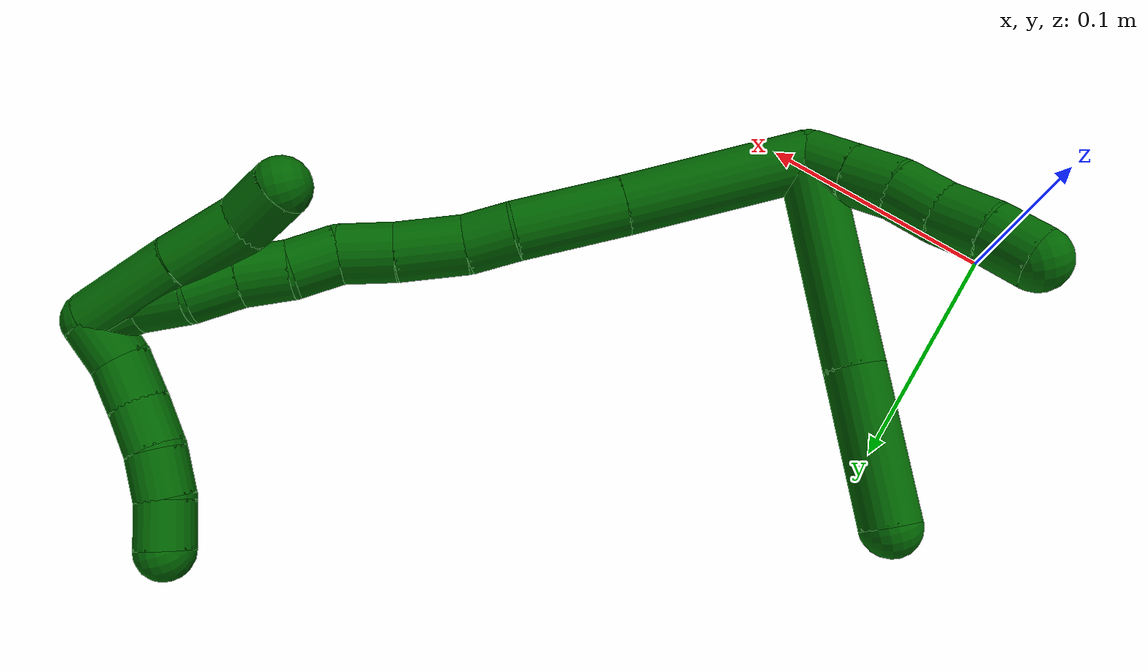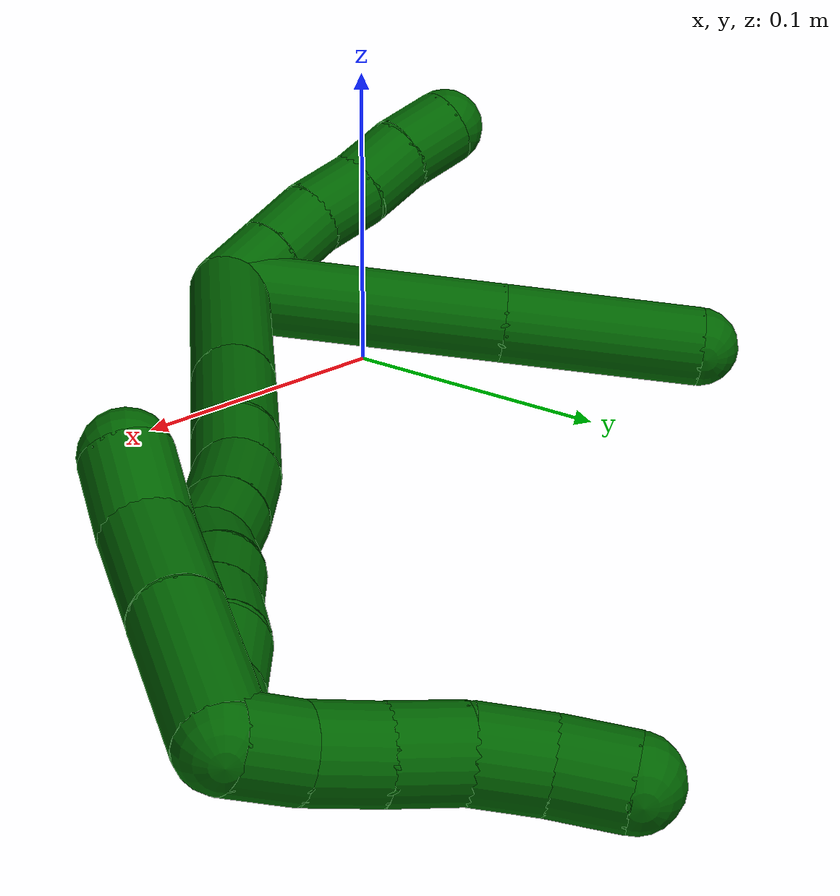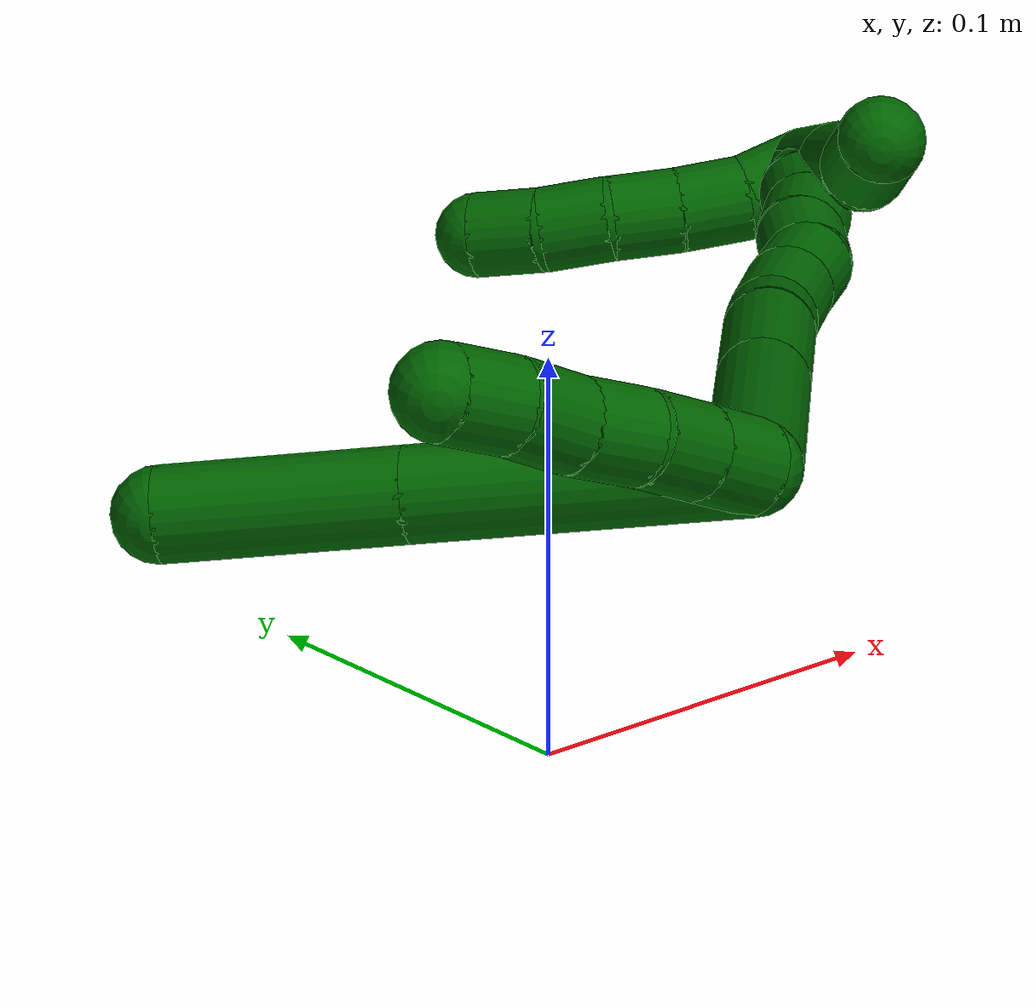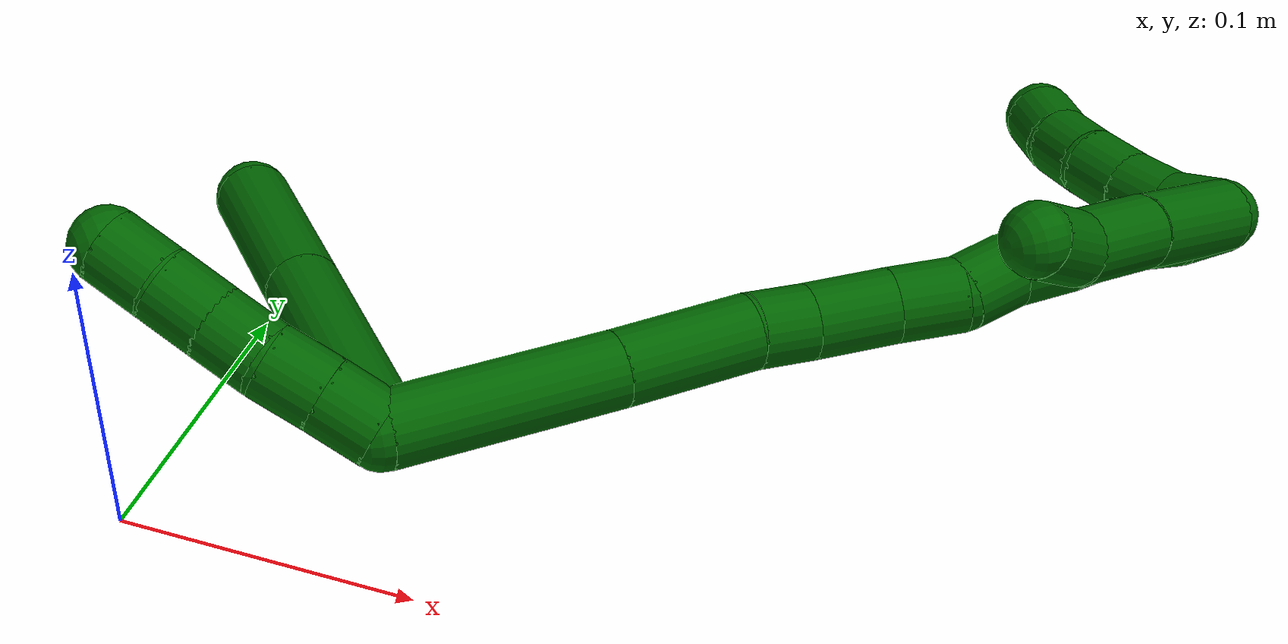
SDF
<sdf version="1.7">
 <world name="default">
  <model name="6">
   <static>0</static>
   <link name="6">
    <collision name="collision-cylinder-e_1_2_8">
     <pose>-0.043019 0.004726 0.004239 -0.839685 -1.42427 0.735612</pose>
     <geometry><cylinder><radius>0.0125</radius><length>0.086971</length></cylinder></geometry>
     <surface>
      <friction><ode><mu>1.16</mu><mu2>1.16</mu2><slip1>0</slip1><slip2>0</slip2></ode></friction>
      <contact><ode><kp>1e+06</kp><kd>1</kd><max_vel>0</max_vel><min_depth>0.001</min_depth></ode></contact>
     </surface>
    </collision>
    <visual name="visual-cylinder-e_1_2_8">
     <pose>-0.043019 0.004726 0.004239 -0.839685 -1.42427 0.735612</pose>
     <geometry><cylinder><radius>0.0125</radius><length>0.086971</length></cylinder></geometry>
     <material><ambient>0 0.392157 0.003922 1</ambient></material>
    </visual>
    <collision name="collision-cylinder-e_2_8_6">
     <pose>-0.117216 0.012906 0.011513 -0.849803 -1.42439 0.744814</pose>
     <geometry><cylinder><radius>0.0125</radius><length>0.063029</length></cylinder></geometry>
     <surface>
      <friction><ode><mu>1.16</mu><mu2>1.16</mu2><slip1>0</slip1><slip2>0</slip2></ode></friction>
      <contact><ode><kp>1e+06</kp><kd>1</kd><max_vel>0</max_vel><min_depth>0.001</min_depth></ode></contact>
     </surface>
    </collision>
    <visual name="visual-cylinder-e_2_8_6">
     <pose>-0.117216 0.012906 0.011513 -0.849803 -1.42439 0.744814</pose>
     <geometry><cylinder><radius>0.0125</radius><length>0.063029</length></cylinder></geometry>
     <material><ambient>0 0.392157 0.003922 1</ambient></material>
    </visual>
    <collision name="collision-cylinder-e_1_2_9">
     <pose>-0.006906 -0.003811 -0.006147 2.58662 -0.762264 -1.90573</pose>
     <geometry><cylinder><radius>0.0125</radius><length>0.02</length></cylinder></geometry>
     <surface>
      <friction><ode><mu>1.16</mu><mu2>1.16</mu2><slip1>0</slip1><slip2>0</slip2></ode></friction>
      <contact><ode><kp>1e+06</kp><kd>1</kd><max_vel>0</max_vel><min_depth>0.001</min_depth></ode></contact>
     </surface>
    </collision>
    <visual name="visual-cylinder-e_1_2_9">
     <pose>-0.006906 -0.003811 -0.006147 2.58662 -0.762264 -1.90573</pose>
     <geometry><cylinder><radius>0.0125</radius><length>0.02</length></cylinder></geometry>
     <material><ambient>0 0.392157 0.003922 1</ambient></material>
    </visual>
    <collision name="collision-cylinder-e_2_9_10">
     <pose>-0.020633 -0.011311 -0.018608 2.61284 -0.750773 -1.93775</pose>
     <geometry><cylinder><radius>0.0125</radius><length>0.02</length></cylinder></geometry>
     <surface>
      <friction><ode><mu>1.16</mu><mu2>1.16</mu2><slip1>0</slip1><slip2>0</slip2></ode></friction>
      <contact><ode><kp>1e+06</kp><kd>1</kd><max_vel>0</max_vel><min_depth>0.001</min_depth></ode></contact>
     </surface>
    </collision>
    <visual name="visual-cylinder-e_2_9_10">
     <pose>-0.020633 -0.011311 -0.018608 2.61284 -0.750773 -1.93775</pose>
     <geometry><cylinder><radius>0.0125</radius><length>0.02</length></cylinder></geometry>
     <material><ambient>0 0.392157 0.003922 1</ambient></material>
    </visual>
    <collision name="collision-cylinder-e_3_10_11">
     <pose>-0.035462 -0.01807 -0.030065 2.60341 -0.928429 -2.13472</pose>
     <geometry><cylinder><radius>0.0125</radius><length>0.02</length></cylinder></geometry>
     <surface>
      <friction><ode><mu>1.16</mu><mu2>1.16</mu2><slip1>0</slip1><slip2>0</slip2></ode></friction>
      <contact><ode><kp>1e+06</kp><kd>1</kd><max_vel>0</max_vel><min_depth>0.001</min_depth></ode></contact>
     </surface>
    </collision>
    <visual name="visual-cylinder-e_3_10_11">
     <pose>-0.035462 -0.01807 -0.030065 2.60341 -0.928429 -2.13472</pose>
     <geometry><cylinder><radius>0.0125</radius><length>0.02</length></cylinder></geometry>
     <material><ambient>0 0.392157 0.003922 1</ambient></material>
    </visual>
    <collision name="collision-cylinder-e_4_11_12">
     <pose>-0.050729 -0.025195 -0.040763 2.51109 -0.812506 -1.84425</pose>
     <geometry><cylinder><radius>0.0125</radius><length>0.02</length></cylinder></geometry>
     <surface>
      <friction><ode><mu>1.16</mu><mu2>1.16</mu2><slip1>0</slip1><slip2>0</slip2></ode></friction>
      <contact><ode><kp>1e+06</kp><kd>1</kd><max_vel>0</max_vel><min_depth>0.001</min_depth></ode></contact>
     </surface>
    </collision>
    <visual name="visual-cylinder-e_4_11_12">
     <pose>-0.050729 -0.025195 -0.040763 2.51109 -0.812506 -1.84425</pose>
     <geometry><cylinder><radius>0.0125</radius><length>0.02</length></cylinder></geometry>
     <material><ambient>0 0.392157 0.003922 1</ambient></material>
    </visual>
    <collision name="collision-cylinder-e_5_12_5">
     <pose>-0.065999 -0.032379 -0.051422 2.5915 -0.928935 -2.11569</pose>
     <geometry><cylinder><radius>0.0125</radius><length>0.02</length></cylinder></geometry>
     <surface>
      <friction><ode><mu>1.16</mu><mu2>1.16</mu2><slip1>0</slip1><slip2>0</slip2></ode></friction>
      <contact><ode><kp>1e+06</kp><kd>1</kd><max_vel>0</max_vel><min_depth>0.001</min_depth></ode></contact>
     </surface>
    </collision>
    <visual name="visual-cylinder-e_5_12_5">
     <pose>-0.065999 -0.032379 -0.051422 2.5915 -0.928935 -2.11569</pose>
     <geometry><cylinder><radius>0.0125</radius><length>0.02</length></cylinder></geometry>
     <material><ambient>0 0.392157 0.003922 1</ambient></material>
    </visual>
    <collision name="collision-cylinder-e_1_2_13">
     <pose>0.001265 0.000296 0.038528 -0.007673 0.032829 -0.000126</pose>
     <geometry><cylinder><radius>0.0125</radius><length>0.077099</length></cylinder></geometry>
     <surface>
      <friction><ode><mu>1.16</mu><mu2>1.16</mu2><slip1>0</slip1><slip2>0</slip2></ode></friction>
      <contact><ode><kp>1e+06</kp><kd>1</kd><max_vel>0</max_vel><min_depth>0.001</min_depth></ode></contact>
     </surface>
    </collision>
    <visual name="visual-cylinder-e_1_2_13">
     <pose>0.001265 0.000296 0.038528 -0.007673 0.032829 -0.000126</pose>
     <geometry><cylinder><radius>0.0125</radius><length>0.077099</length></cylinder></geometry>
     <material><ambient>0 0.392157 0.003922 1</ambient></material>
    </visual>
    <collision name="collision-cylinder-e_2_13_14">
     <pose>0.003412 6.3e-05 0.099928 0.023092 0.038501 0.000445</pose>
     <geometry><cylinder><radius>0.0125</radius><length>0.045791</length></cylinder></geometry>
     <surface>
      <friction><ode><mu>1.16</mu><mu2>1.16</mu2><slip1>0</slip1><slip2>0</slip2></ode></friction>
      <contact><ode><kp>1e+06</kp><kd>1</kd><max_vel>0</max_vel><min_depth>0.001</min_depth></ode></contact>
     </surface>
    </collision>
    <visual name="visual-cylinder-e_2_13_14">
     <pose>0.003412 6.3e-05 0.099928 0.023092 0.038501 0.000445</pose>
     <geometry><cylinder><radius>0.0125</radius><length>0.045791</length></cylinder></geometry>
     <material><ambient>0 0.392157 0.003922 1</ambient></material>
    </visual>
    <collision name="collision-cylinder-e_3_14_15">
     <pose>0.004706 0.000675 0.13296 -0.111729 0.040312 -0.002255</pose>
     <geometry><cylinder><radius>0.0125</radius><length>0.020462</length></cylinder></geometry>
     <surface>
      <friction><ode><mu>1.16</mu><mu2>1.16</mu2><slip1>0</slip1><slip2>0</slip2></ode></friction>
      <contact><ode><kp>1e+06</kp><kd>1</kd><max_vel>0</max_vel><min_depth>0.001</min_depth></ode></contact>
     </surface>
    </collision>
    <visual name="visual-cylinder-e_3_14_15">
     <pose>0.004706 0.000675 0.13296 -0.111729 0.040312 -0.002255</pose>
     <geometry><cylinder><radius>0.0125</radius><length>0.020462</length></cylinder></geometry>
     <material><ambient>0 0.392157 0.003922 1</ambient></material>
    </visual>
    <collision name="collision-cylinder-e_4_15_16">
     <pose>0.00748 0.00139 0.157401 0.02973 0.163864 0.002441</pose>
     <geometry><cylinder><radius>0.0125</radius><length>0.028965</length></cylinder></geometry>
     <surface>
      <friction><ode><mu>1.16</mu><mu2>1.16</mu2><slip1>0</slip1><slip2>0</slip2></ode></friction>
      <contact><ode><kp>1e+06</kp><kd>1</kd><max_vel>0</max_vel><min_depth>0.001</min_depth></ode></contact>
     </surface>
    </collision>
    <visual name="visual-cylinder-e_4_15_16">
     <pose>0.00748 0.00139 0.157401 0.02973 0.163864 0.002441</pose>
     <geometry><cylinder><radius>0.0125</radius><length>0.028965</length></cylinder></geometry>
     <material><ambient>0 0.392157 0.003922 1</ambient></material>
    </visual>
    <collision name="collision-cylinder-e_5_16_17">
     <pose>0.012542 0.000369 0.18299 0.052645 0.233988 0.006189</pose>
     <geometry><cylinder><radius>0.0125</radius><length>0.023279</length></cylinder></geometry>
     <surface>
      <friction><ode><mu>1.16</mu><mu2>1.16</mu2><slip1>0</slip1><slip2>0</slip2></ode></friction>
      <contact><ode><kp>1e+06</kp><kd>1</kd><max_vel>0</max_vel><min_depth>0.001</min_depth></ode></contact>
     </surface>
    </collision>
    <visual name="visual-cylinder-e_5_16_17">
     <pose>0.012542 0.000369 0.18299 0.052645 0.233988 0.006189</pose>
     <geometry><cylinder><radius>0.0125</radius><length>0.023279</length></cylinder></geometry>
     <material><ambient>0 0.392157 0.003922 1</ambient></material>
    </visual>
    <collision name="collision-cylinder-e_6_17_18">
     <pose>0.014332 -0.001456 0.204263 0.122716 -0.090251 -0.005548</pose>
     <geometry><cylinder><radius>0.0125</radius><length>0.020165</length></cylinder></geometry>
     <surface>
      <friction><ode><mu>1.16</mu><mu2>1.16</mu2><slip1>0</slip1><slip2>0</slip2></ode></friction>
      <contact><ode><kp>1e+06</kp><kd>1</kd><max_vel>0</max_vel><min_depth>0.001</min_depth></ode></contact>
     </surface>
    </collision>
    <visual name="visual-cylinder-e_6_17_18">
     <pose>0.014332 -0.001456 0.204263 0.122716 -0.090251 -0.005548</pose>
     <geometry><cylinder><radius>0.0125</radius><length>0.020165</length></cylinder></geometry>
     <material><ambient>0 0.392157 0.003922 1</ambient></material>
    </visual>
    <collision name="collision-cylinder-e_7_18_19">
     <pose>0.014506 -0.003367 0.224634 0.065458 0.103493 0.003391</pose>
     <geometry><cylinder><radius>0.0125</radius><length>0.020968</length></cylinder></geometry>
     <surface>
      <friction><ode><mu>1.16</mu><mu2>1.16</mu2><slip1>0</slip1><slip2>0</slip2></ode></friction>
      <contact><ode><kp>1e+06</kp><kd>1</kd><max_vel>0</max_vel><min_depth>0.001</min_depth></ode></contact>
     </surface>
    </collision>
    <visual name="visual-cylinder-e_7_18_19">
     <pose>0.014506 -0.003367 0.224634 0.065458 0.103493 0.003391</pose>
     <geometry><cylinder><radius>0.0125</radius><length>0.020968</length></cylinder></geometry>
     <material><ambient>0 0.392157 0.003922 1</ambient></material>
    </visual>
    <collision name="collision-cylinder-e_8_19_20">
     <pose>0.015034 -0.004329 0.245749 0.026137 -0.051809 -0.000677</pose>
     <geometry><cylinder><radius>0.0125</radius><length>0.021455</length></cylinder></geometry>
     <surface>
      <friction><ode><mu>1.16</mu><mu2>1.16</mu2><slip1>0</slip1><slip2>0</slip2></ode></friction>
      <contact><ode><kp>1e+06</kp><kd>1</kd><max_vel>0</max_vel><min_depth>0.001</min_depth></ode></contact>
     </surface>
    </collision>
    <visual name="visual-cylinder-e_8_19_20">
     <pose>0.015034 -0.004329 0.245749 0.026137 -0.051809 -0.000677</pose>
     <geometry><cylinder><radius>0.0125</radius><length>0.021455</length></cylinder></geometry>
     <material><ambient>0 0.392157 0.003922 1</ambient></material>
    </visual>
    <collision name="collision-cylinder-e_9_20_21">
     <pose>0.015973 -0.003603 0.267148 -0.093835 0.138325 -0.006505</pose>
     <geometry><cylinder><radius>0.0125</radius><length>0.02168</length></cylinder></geometry>
     <surface>
      <friction><ode><mu>1.16</mu><mu2>1.16</mu2><slip1>0</slip1><slip2>0</slip2></ode></friction>
      <contact><ode><kp>1e+06</kp><kd>1</kd><max_vel>0</max_vel><min_depth>0.001</min_depth></ode></contact>
     </surface>
    </collision>
    <visual name="visual-cylinder-e_9_20_21">
     <pose>0.015973 -0.003603 0.267148 -0.093835 0.138325 -0.006505</pose>
     <geometry><cylinder><radius>0.0125</radius><length>0.02168</length></cylinder></geometry>
     <material><ambient>0 0.392157 0.003922 1</ambient></material>
    </visual>
    <collision name="collision-cylinder-e_10_21_1">
     <pose>0.016782 -0.001939 0.287859 -0.065602 -0.068123 0.002236</pose>
     <geometry><cylinder><radius>0.0125</radius><length>0.020135</length></cylinder></geometry>
     <surface>
      <friction><ode><mu>1.16</mu><mu2>1.16</mu2><slip1>0</slip1><slip2>0</slip2></ode></friction>
      <contact><ode><kp>1e+06</kp><kd>1</kd><max_vel>0</max_vel><min_depth>0.001</min_depth></ode></contact>
     </surface>
    </collision>
    <visual name="visual-cylinder-e_10_21_1">
     <pose>0.016782 -0.001939 0.287859 -0.065602 -0.068123 0.002236</pose>
     <geometry><cylinder><radius>0.0125</radius><length>0.020135</length></cylinder></geometry>
     <material><ambient>0 0.392157 0.003922 1</ambient></material>
    </visual>
    <collision name="collision-cylinder-e_1_1_22">
     <pose>0.020572 -0.007162 0.277178 2.86481 0.205007 1.27225</pose>
     <geometry><cylinder><radius>0.0125</radius><length>0.043967</length></cylinder></geometry>
     <surface>
      <friction><ode><mu>1.16</mu><mu2>1.16</mu2><slip1>0</slip1><slip2>0</slip2></ode></friction>
      <contact><ode><kp>1e+06</kp><kd>1</kd><max_vel>0</max_vel><min_depth>0.001</min_depth></ode></contact>
     </surface>
    </collision>
    <visual name="visual-cylinder-e_1_1_22">
     <pose>0.020572 -0.007162 0.277178 2.86481 0.205007 1.27225</pose>
     <geometry><cylinder><radius>0.0125</radius><length>0.043967</length></cylinder></geometry>
     <material><ambient>0 0.392157 0.003922 1</ambient></material>
    </visual>
    <collision name="collision-cylinder-e_2_22_23">
     <pose>0.028088 -0.016518 0.240805 2.92338 0.187212 1.41711</pose>
     <geometry><cylinder><radius>0.0125</radius><length>0.03267</length></cylinder></geometry>
     <surface>
      <friction><ode><mu>1.16</mu><mu2>1.16</mu2><slip1>0</slip1><slip2>0</slip2></ode></friction>
      <contact><ode><kp>1e+06</kp><kd>1</kd><max_vel>0</max_vel><min_depth>0.001</min_depth></ode></contact>
     </surface>
    </collision>
    <visual name="visual-cylinder-e_2_22_23">
     <pose>0.028088 -0.016518 0.240805 2.92338 0.187212 1.41711</pose>
     <geometry><cylinder><radius>0.0125</radius><length>0.03267</length></cylinder></geometry>
     <material><ambient>0 0.392157 0.003922 1</ambient></material>
    </visual>
    <collision name="collision-cylinder-e_3_23_4">
     <pose>0.033386 -0.026166 0.21548 2.57274 0.194567 0.644369</pose>
     <geometry><cylinder><radius>0.0125</radius><length>0.023363</length></cylinder></geometry>
     <surface>
      <friction><ode><mu>1.16</mu><mu2>1.16</mu2><slip1>0</slip1><slip2>0</slip2></ode></friction>
      <contact><ode><kp>1e+06</kp><kd>1</kd><max_vel>0</max_vel><min_depth>0.001</min_depth></ode></contact>
     </surface>
    </collision>
    <visual name="visual-cylinder-e_3_23_4">
     <pose>0.033386 -0.026166 0.21548 2.57274 0.194567 0.644369</pose>
     <geometry><cylinder><radius>0.0125</radius><length>0.023363</length></cylinder></geometry>
     <material><ambient>0 0.392157 0.003922 1</ambient></material>
    </visual>
    <collision name="collision-cylinder-e_1_1_24">
     <pose>0.007181 0.002098 0.294866 -2.29958 -1.10076 1.88079</pose>
     <geometry><cylinder><radius>0.0125</radius><length>0.02</length></cylinder></geometry>
     <surface>
      <friction><ode><mu>1.16</mu><mu2>1.16</mu2><slip1>0</slip1><slip2>0</slip2></ode></friction>
      <contact><ode><kp>1e+06</kp><kd>1</kd><max_vel>0</max_vel><min_depth>0.001</min_depth></ode></contact>
     </surface>
    </collision>
    <visual name="visual-cylinder-e_1_1_24">
     <pose>0.007181 0.002098 0.294866 -2.29958 -1.10076 1.88079</pose>
     <geometry><cylinder><radius>0.0125</radius><length>0.02</length></cylinder></geometry>
     <material><ambient>0 0.392157 0.003922 1</ambient></material>
    </visual>
    <collision name="collision-cylinder-e_2_24_25">
     <pose>-0.011503 0.006923 0.290277 -2.3984 -1.3555 2.23985</pose>
     <geometry><cylinder><radius>0.0125</radius><length>0.02</length></cylinder></geometry>
     <surface>
      <friction><ode><mu>1.16</mu><mu2>1.16</mu2><slip1>0</slip1><slip2>0</slip2></ode></friction>
      <contact><ode><kp>1e+06</kp><kd>1</kd><max_vel>0</max_vel><min_depth>0.001</min_depth></ode></contact>
     </surface>
    </collision>
    <visual name="visual-cylinder-e_2_24_25">
     <pose>-0.011503 0.006923 0.290277 -2.3984 -1.3555 2.23985</pose>
     <geometry><cylinder><radius>0.0125</radius><length>0.02</length></cylinder></geometry>
     <material><ambient>0 0.392157 0.003922 1</ambient></material>
    </visual>
    <collision name="collision-cylinder-e_3_25_26">
     <pose>-0.031141 0.00926 0.287359 -2.55585 -1.40875 2.45962</pose>
     <geometry><cylinder><radius>0.0125</radius><length>0.02</length></cylinder></geometry>
     <surface>
      <friction><ode><mu>1.16</mu><mu2>1.16</mu2><slip1>0</slip1><slip2>0</slip2></ode></friction>
      <contact><ode><kp>1e+06</kp><kd>1</kd><max_vel>0</max_vel><min_depth>0.001</min_depth></ode></contact>
     </surface>
    </collision>
    <visual name="visual-cylinder-e_3_25_26">
     <pose>-0.031141 0.00926 0.287359 -2.55585 -1.40875 2.45962</pose>
     <geometry><cylinder><radius>0.0125</radius><length>0.02</length></cylinder></geometry>
     <material><ambient>0 0.392157 0.003922 1</ambient></material>
    </visual>
    <collision name="collision-cylinder-e_4_26_27">
     <pose>-0.050845 0.011916 0.286423 -1.34315 -1.38871 1.1693</pose>
     <geometry><cylinder><radius>0.0125</radius><length>0.02</length></cylinder></geometry>
     <surface>
      <friction><ode><mu>1.16</mu><mu2>1.16</mu2><slip1>0</slip1><slip2>0</slip2></ode></friction>
      <contact><ode><kp>1e+06</kp><kd>1</kd><max_vel>0</max_vel><min_depth>0.001</min_depth></ode></contact>
     </surface>
    </collision>
    <visual name="visual-cylinder-e_4_26_27">
     <pose>-0.050845 0.011916 0.286423 -1.34315 -1.38871 1.1693</pose>
     <geometry><cylinder><radius>0.0125</radius><length>0.02</length></cylinder></geometry>
     <material><ambient>0 0.392157 0.003922 1</ambient></material>
    </visual>
    <collision name="collision-cylinder-e_5_27_3">
     <pose>-0.070299 0.015032 0.289207 -0.517468 -1.29398 0.394688</pose>
     <geometry><cylinder><radius>0.0125</radius><length>0.02</length></cylinder></geometry>
     <surface>
      <friction><ode><mu>1.16</mu><mu2>1.16</mu2><slip1>0</slip1><slip2>0</slip2></ode></friction>
      <contact><ode><kp>1e+06</kp><kd>1</kd><max_vel>0</max_vel><min_depth>0.001</min_depth></ode></contact>
     </surface>
    </collision>
    <visual name="visual-cylinder-e_5_27_3">
     <pose>-0.070299 0.015032 0.289207 -0.517468 -1.29398 0.394688</pose>
     <geometry><cylinder><radius>0.0125</radius><length>0.02</length></cylinder></geometry>
     <material><ambient>0 0.392157 0.003922 1</ambient></material>
    </visual>
    <collision name="collision-sphere-3">
     <pose>-0.079918 0.016384 0.291582 0 -0 0</pose>
     <geometry><sphere><radius>0.0125</radius></sphere></geometry>
     <surface>
      <friction><ode><mu>1.16</mu><mu2>1.16</mu2><slip1>0</slip1><slip2>0</slip2></ode></friction>
      <contact><ode><kp>1e+06</kp><kd>1</kd><max_vel>0</max_vel><min_depth>0.001</min_depth></ode></contact>
     </surface>
    </collision>
    <visual name="visual-sphere-3">
     <pose>-0.079918 0.016384 0.291582 0 -0 0</pose>
     <geometry><sphere><radius>0.0125</radius></sphere></geometry>
     <material><ambient>0 0.392157 0.003922 1</ambient></material>
    </visual>
    <collision name="collision-sphere-27">
     <pose>-0.06068 0.01368 0.286832 0 -0 0</pose>
     <geometry><sphere><radius>0.0125</radius></sphere></geometry>
     <surface>
      <friction><ode><mu>1.16</mu><mu2>1.16</mu2><slip1>0</slip1><slip2>0</slip2></ode></friction>
      <contact><ode><kp>1e+06</kp><kd>1</kd><max_vel>0</max_vel><min_depth>0.001</min_depth></ode></contact>
     </surface>
    </collision>
    <visual name="visual-sphere-27">
     <pose>-0.06068 0.01368 0.286832 0 -0 0</pose>
     <geometry><sphere><radius>0.0125</radius></sphere></geometry>
     <material><ambient>0 0.392157 0.003922 1</ambient></material>
    </visual>
    <collision name="collision-sphere-26">
     <pose>-0.04101 0.010152 0.286015 0 -0 0</pose>
     <geometry><sphere><radius>0.0125</radius></sphere></geometry>
     <surface>
      <friction><ode><mu>1.16</mu><mu2>1.16</mu2><slip1>0</slip1><slip2>0</slip2></ode></friction>
      <contact><ode><kp>1e+06</kp><kd>1</kd><max_vel>0</max_vel><min_depth>0.001</min_depth></ode></contact>
     </surface>
    </collision>
    <visual name="visual-sphere-26">
     <pose>-0.04101 0.010152 0.286015 0 -0 0</pose>
     <geometry><sphere><radius>0.0125</radius></sphere></geometry>
     <material><ambient>0 0.392157 0.003922 1</ambient></material>
    </visual>
    <collision name="collision-sphere-25">
     <pose>-0.021273 0.008368 0.288704 0 -0 0</pose>
     <geometry><sphere><radius>0.0125</radius></sphere></geometry>
     <surface>
      <friction><ode><mu>1.16</mu><mu2>1.16</mu2><slip1>0</slip1><slip2>0</slip2></ode></friction>
      <contact><ode><kp>1e+06</kp><kd>1</kd><max_vel>0</max_vel><min_depth>0.001</min_depth></ode></contact>
     </surface>
    </collision>
    <visual name="visual-sphere-25">
     <pose>-0.021273 0.008368 0.288704 0 -0 0</pose>
     <geometry><sphere><radius>0.0125</radius></sphere></geometry>
     <material><ambient>0 0.392157 0.003922 1</ambient></material>
    </visual>
    <collision name="collision-sphere-24">
     <pose>-0.001734 0.005477 0.29185 0 -0 0</pose>
     <geometry><sphere><radius>0.0125</radius></sphere></geometry>
     <surface>
      <friction><ode><mu>1.16</mu><mu2>1.16</mu2><slip1>0</slip1><slip2>0</slip2></ode></friction>
      <contact><ode><kp>1e+06</kp><kd>1</kd><max_vel>0</max_vel><min_depth>0.001</min_depth></ode></contact>
     </surface>
    </collision>
    <visual name="visual-sphere-24">
     <pose>-0.001734 0.005477 0.29185 0 -0 0</pose>
     <geometry><sphere><radius>0.0125</radius></sphere></geometry>
     <material><ambient>0 0.392157 0.003922 1</ambient></material>
    </visual>
    <collision name="collision-sphere-4">
     <pose>0.035645 -0.03234 0.205824 0 -0 0</pose>
     <geometry><sphere><radius>0.0125</radius></sphere></geometry>
     <surface>
      <friction><ode><mu>1.16</mu><mu2>1.16</mu2><slip1>0</slip1><slip2>0</slip2></ode></friction>
      <contact><ode><kp>1e+06</kp><kd>1</kd><max_vel>0</max_vel><min_depth>0.001</min_depth></ode></contact>
     </surface>
    </collision>
    <visual name="visual-sphere-4">
     <pose>0.035645 -0.03234 0.205824 0 -0 0</pose>
     <geometry><sphere><radius>0.0125</radius></sphere></geometry>
     <material><ambient>0 0.392157 0.003922 1</ambient></material>
    </visual>
    <collision name="collision-sphere-23">
     <pose>0.031128 -0.019992 0.225136 0 -0 0</pose>
     <geometry><sphere><radius>0.0125</radius></sphere></geometry>
     <surface>
      <friction><ode><mu>1.16</mu><mu2>1.16</mu2><slip1>0</slip1><slip2>0</slip2></ode></friction>
      <contact><ode><kp>1e+06</kp><kd>1</kd><max_vel>0</max_vel><min_depth>0.001</min_depth></ode></contact>
     </surface>
    </collision>
    <visual name="visual-sphere-23">
     <pose>0.031128 -0.019992 0.225136 0 -0 0</pose>
     <geometry><sphere><radius>0.0125</radius></sphere></geometry>
     <material><ambient>0 0.392157 0.003922 1</ambient></material>
    </visual>
    <collision name="collision-sphere-22">
     <pose>0.025047 -0.013043 0.256474 0 -0 0</pose>
     <geometry><sphere><radius>0.0125</radius></sphere></geometry>
     <surface>
      <friction><ode><mu>1.16</mu><mu2>1.16</mu2><slip1>0</slip1><slip2>0</slip2></ode></friction>
      <contact><ode><kp>1e+06</kp><kd>1</kd><max_vel>0</max_vel><min_depth>0.001</min_depth></ode></contact>
     </surface>
    </collision>
    <visual name="visual-sphere-22">
     <pose>0.025047 -0.013043 0.256474 0 -0 0</pose>
     <geometry><sphere><radius>0.0125</radius></sphere></geometry>
     <material><ambient>0 0.392157 0.003922 1</ambient></material>
    </visual>
    <collision name="collision-sphere-1">
     <pose>0.016097 -0.00128 0.297882 0 -0 0</pose>
     <geometry><sphere><radius>0.0125</radius></sphere></geometry>
     <surface>
      <friction><ode><mu>1.16</mu><mu2>1.16</mu2><slip1>0</slip1><slip2>0</slip2></ode></friction>
      <contact><ode><kp>1e+06</kp><kd>1</kd><max_vel>0</max_vel><min_depth>0.001</min_depth></ode></contact>
     </surface>
    </collision>
    <visual name="visual-sphere-1">
     <pose>0.016097 -0.00128 0.297882 0 -0 0</pose>
     <geometry><sphere><radius>0.0125</radius></sphere></geometry>
     <material><ambient>0 0.392157 0.003922 1</ambient></material>
    </visual>
    <collision name="collision-sphere-21">
     <pose>0.017467 -0.002597 0.277837 0 -0 0</pose>
     <geometry><sphere><radius>0.0125</radius></sphere></geometry>
     <surface>
      <friction><ode><mu>1.16</mu><mu2>1.16</mu2><slip1>0</slip1><slip2>0</slip2></ode></friction>
      <contact><ode><kp>1e+06</kp><kd>1</kd><max_vel>0</max_vel><min_depth>0.001</min_depth></ode></contact>
     </surface>
    </collision>
    <visual name="visual-sphere-21">
     <pose>0.017467 -0.002597 0.277837 0 -0 0</pose>
     <geometry><sphere><radius>0.0125</radius></sphere></geometry>
     <material><ambient>0 0.392157 0.003922 1</ambient></material>
    </visual>
    <collision name="collision-sphere-11">
     <pose>-0.043469 -0.02114 -0.035209 0 -0 0</pose>
     <geometry><sphere><radius>0.0125</radius></sphere></geometry>
     <surface>
      <friction><ode><mu>1.16</mu><mu2>1.16</mu2><slip1>0</slip1><slip2>0</slip2></ode></friction>
      <contact><ode><kp>1e+06</kp><kd>1</kd><max_vel>0</max_vel><min_depth>0.001</min_depth></ode></contact>
     </surface>
    </collision>
    <visual name="visual-sphere-11">
     <pose>-0.043469 -0.02114 -0.035209 0 -0 0</pose>
     <geometry><sphere><radius>0.0125</radius></sphere></geometry>
     <material><ambient>0 0.392157 0.003922 1</ambient></material>
    </visual>
    <collision name="collision-sphere-10">
     <pose>-0.027455 -0.014999 -0.024921 0 -0 0</pose>
     <geometry><sphere><radius>0.0125</radius></sphere></geometry>
     <surface>
      <friction><ode><mu>1.16</mu><mu2>1.16</mu2><slip1>0</slip1><slip2>0</slip2></ode></friction>
      <contact><ode><kp>1e+06</kp><kd>1</kd><max_vel>0</max_vel><min_depth>0.001</min_depth></ode></contact>
     </surface>
    </collision>
    <visual name="visual-sphere-10">
     <pose>-0.027455 -0.014999 -0.024921 0 -0 0</pose>
     <geometry><sphere><radius>0.0125</radius></sphere></geometry>
     <material><ambient>0 0.392157 0.003922 1</ambient></material>
    </visual>
    <collision name="collision-sphere-6">
     <pose>-0.148394 0.01636 0.014548 0 -0 0</pose>
     <geometry><sphere><radius>0.0125</radius></sphere></geometry>
     <surface>
      <friction><ode><mu>1.16</mu><mu2>1.16</mu2><slip1>0</slip1><slip2>0</slip2></ode></friction>
      <contact><ode><kp>1e+06</kp><kd>1</kd><max_vel>0</max_vel><min_depth>0.001</min_depth></ode></contact>
     </surface>
    </collision>
    <visual name="visual-sphere-6">
     <pose>-0.148394 0.01636 0.014548 0 -0 0</pose>
     <geometry><sphere><radius>0.0125</radius></sphere></geometry>
     <material><ambient>0 0.392157 0.003922 1</ambient></material>
    </visual>
    <collision name="collision-sphere-9">
     <pose>-0.013811 -0.007622 -0.012294 0 -0 0</pose>
     <geometry><sphere><radius>0.0125</radius></sphere></geometry>
     <surface>
      <friction><ode><mu>1.16</mu><mu2>1.16</mu2><slip1>0</slip1><slip2>0</slip2></ode></friction>
      <contact><ode><kp>1e+06</kp><kd>1</kd><max_vel>0</max_vel><min_depth>0.001</min_depth></ode></contact>
     </surface>
    </collision>
    <visual name="visual-sphere-9">
     <pose>-0.013811 -0.007622 -0.012294 0 -0 0</pose>
     <geometry><sphere><radius>0.0125</radius></sphere></geometry>
     <material><ambient>0 0.392157 0.003922 1</ambient></material>
    </visual>
    <collision name="collision-sphere-2">
     <geometry><sphere><radius>0.0125</radius></sphere></geometry>
     <surface>
      <friction><ode><mu>1.16</mu><mu2>1.16</mu2><slip1>0</slip1><slip2>0</slip2></ode></friction>
      <contact><ode><kp>1e+06</kp><kd>1</kd><max_vel>0</max_vel><min_depth>0.001</min_depth></ode></contact>
     </surface>
    </collision>
    <visual name="visual-sphere-2">
     <geometry><sphere><radius>0.0125</radius></sphere></geometry>
     <material><ambient>0 0.392157 0.003922 1</ambient></material>
    </visual>
    <collision name="collision-sphere-19">
     <pose>0.015589 -0.004049 0.23504 0 -0 0</pose>
     <geometry><sphere><radius>0.0125</radius></sphere></geometry>
     <surface>
      <friction><ode><mu>1.16</mu><mu2>1.16</mu2><slip1>0</slip1><slip2>0</slip2></ode></friction>
      <contact><ode><kp>1e+06</kp><kd>1</kd><max_vel>0</max_vel><min_depth>0.001</min_depth></ode></contact>
     </surface>
    </collision>
    <visual name="visual-sphere-19">
     <pose>0.015589 -0.004049 0.23504 0 -0 0</pose>
     <geometry><sphere><radius>0.0125</radius></sphere></geometry>
     <material><ambient>0 0.392157 0.003922 1</ambient></material>
    </visual>
    <collision name="collision-sphere-8">
     <pose>-0.086039 0.009453 0.008478 0 -0 0</pose>
     <geometry><sphere><radius>0.0125</radius></sphere></geometry>
     <surface>
      <friction><ode><mu>1.16</mu><mu2>1.16</mu2><slip1>0</slip1><slip2>0</slip2></ode></friction>
      <contact><ode><kp>1e+06</kp><kd>1</kd><max_vel>0</max_vel><min_depth>0.001</min_depth></ode></contact>
     </surface>
    </collision>
    <visual name="visual-sphere-8">
     <pose>-0.086039 0.009453 0.008478 0 -0 0</pose>
     <geometry><sphere><radius>0.0125</radius></sphere></geometry>
     <material><ambient>0 0.392157 0.003922 1</ambient></material>
    </visual>
    <collision name="collision-sphere-12">
     <pose>-0.057989 -0.029249 -0.046318 0 -0 0</pose>
     <geometry><sphere><radius>0.0125</radius></sphere></geometry>
     <surface>
      <friction><ode><mu>1.16</mu><mu2>1.16</mu2><slip1>0</slip1><slip2>0</slip2></ode></friction>
      <contact><ode><kp>1e+06</kp><kd>1</kd><max_vel>0</max_vel><min_depth>0.001</min_depth></ode></contact>
     </surface>
    </collision>
    <visual name="visual-sphere-12">
     <pose>-0.057989 -0.029249 -0.046318 0 -0 0</pose>
     <geometry><sphere><radius>0.0125</radius></sphere></geometry>
     <material><ambient>0 0.392157 0.003922 1</ambient></material>
    </visual>
    <collision name="collision-sphere-5">
     <pose>-0.074009 -0.035508 -0.056525 0 -0 0</pose>
     <geometry><sphere><radius>0.0125</radius></sphere></geometry>
     <surface>
      <friction><ode><mu>1.16</mu><mu2>1.16</mu2><slip1>0</slip1><slip2>0</slip2></ode></friction>
      <contact><ode><kp>1e+06</kp><kd>1</kd><max_vel>0</max_vel><min_depth>0.001</min_depth></ode></contact>
     </surface>
    </collision>
    <visual name="visual-sphere-5">
     <pose>-0.074009 -0.035508 -0.056525 0 -0 0</pose>
     <geometry><sphere><radius>0.0125</radius></sphere></geometry>
     <material><ambient>0 0.392157 0.003922 1</ambient></material>
    </visual>
    <collision name="collision-sphere-13">
     <pose>0.002531 0.000591 0.077055 0 -0 0</pose>
     <geometry><sphere><radius>0.0125</radius></sphere></geometry>
     <surface>
      <friction><ode><mu>1.16</mu><mu2>1.16</mu2><slip1>0</slip1><slip2>0</slip2></ode></friction>
      <contact><ode><kp>1e+06</kp><kd>1</kd><max_vel>0</max_vel><min_depth>0.001</min_depth></ode></contact>
     </surface>
    </collision>
    <visual name="visual-sphere-13">
     <pose>0.002531 0.000591 0.077055 0 -0 0</pose>
     <geometry><sphere><radius>0.0125</radius></sphere></geometry>
     <material><ambient>0 0.392157 0.003922 1</ambient></material>
    </visual>
    <collision name="collision-sphere-14">
     <pose>0.004293 -0.000465 0.1228 0 -0 0</pose>
     <geometry><sphere><radius>0.0125</radius></sphere></geometry>
     <surface>
      <friction><ode><mu>1.16</mu><mu2>1.16</mu2><slip1>0</slip1><slip2>0</slip2></ode></friction>
      <contact><ode><kp>1e+06</kp><kd>1</kd><max_vel>0</max_vel><min_depth>0.001</min_depth></ode></contact>
     </surface>
    </collision>
    <visual name="visual-sphere-14">
     <pose>0.004293 -0.000465 0.1228 0 -0 0</pose>
     <geometry><sphere><radius>0.0125</radius></sphere></geometry>
     <material><ambient>0 0.392157 0.003922 1</ambient></material>
    </visual>
    <collision name="collision-sphere-15">
     <pose>0.005118 0.001814 0.143119 0 -0 0</pose>
     <geometry><sphere><radius>0.0125</radius></sphere></geometry>
     <surface>
      <friction><ode><mu>1.16</mu><mu2>1.16</mu2><slip1>0</slip1><slip2>0</slip2></ode></friction>
      <contact><ode><kp>1e+06</kp><kd>1</kd><max_vel>0</max_vel><min_depth>0.001</min_depth></ode></contact>
     </surface>
    </collision>
    <visual name="visual-sphere-15">
     <pose>0.005118 0.001814 0.143119 0 -0 0</pose>
     <geometry><sphere><radius>0.0125</radius></sphere></geometry>
     <material><ambient>0 0.392157 0.003922 1</ambient></material>
    </visual>
    <collision name="collision-sphere-16">
     <pose>0.009843 0.000965 0.171683 0 -0 0</pose>
     <geometry><sphere><radius>0.0125</radius></sphere></geometry>
     <surface>
      <friction><ode><mu>1.16</mu><mu2>1.16</mu2><slip1>0</slip1><slip2>0</slip2></ode></friction>
      <contact><ode><kp>1e+06</kp><kd>1</kd><max_vel>0</max_vel><min_depth>0.001</min_depth></ode></contact>
     </surface>
    </collision>
    <visual name="visual-sphere-16">
     <pose>0.009843 0.000965 0.171683 0 -0 0</pose>
     <geometry><sphere><radius>0.0125</radius></sphere></geometry>
     <material><ambient>0 0.392157 0.003922 1</ambient></material>
    </visual>
    <collision name="collision-sphere-17">
     <pose>0.01524 -0.000227 0.194297 0 -0 0</pose>
     <geometry><sphere><radius>0.0125</radius></sphere></geometry>
     <surface>
      <friction><ode><mu>1.16</mu><mu2>1.16</mu2><slip1>0</slip1><slip2>0</slip2></ode></friction>
      <contact><ode><kp>1e+06</kp><kd>1</kd><max_vel>0</max_vel><min_depth>0.001</min_depth></ode></contact>
     </surface>
    </collision>
    <visual name="visual-sphere-17">
     <pose>0.01524 -0.000227 0.194297 0 -0 0</pose>
     <geometry><sphere><radius>0.0125</radius></sphere></geometry>
     <material><ambient>0 0.392157 0.003922 1</ambient></material>
    </visual>
    <collision name="collision-sphere-18">
     <pose>0.013423 -0.002685 0.214229 0 -0 0</pose>
     <geometry><sphere><radius>0.0125</radius></sphere></geometry>
     <surface>
      <friction><ode><mu>1.16</mu><mu2>1.16</mu2><slip1>0</slip1><slip2>0</slip2></ode></friction>
      <contact><ode><kp>1e+06</kp><kd>1</kd><max_vel>0</max_vel><min_depth>0.001</min_depth></ode></contact>
     </surface>
    </collision>
    <visual name="visual-sphere-18">
     <pose>0.013423 -0.002685 0.214229 0 -0 0</pose>
     <geometry><sphere><radius>0.0125</radius></sphere></geometry>
     <material><ambient>0 0.392157 0.003922 1</ambient></material>
    </visual>
    <collision name="collision-sphere-20">
     <pose>0.014478 -0.004609 0.256459 0 -0 0</pose>
     <geometry><sphere><radius>0.0125</radius></sphere></geometry>
     <surface>
      <friction><ode><mu>1.16</mu><mu2>1.16</mu2><slip1>0</slip1><slip2>0</slip2></ode></friction>
      <contact><ode><kp>1e+06</kp><kd>1</kd><max_vel>0</max_vel><min_depth>0.001</min_depth></ode></contact>
     </surface>
    </collision>
    <visual name="visual-sphere-20">
     <pose>0.014478 -0.004609 0.256459 0 -0 0</pose>
     <geometry><sphere><radius>0.0125</radius></sphere></geometry>
     <material><ambient>0 0.392157 0.003922 1</ambient></material>
    </visual>
    <inertial>
     <pose>-0.017061 -0.001832 0.129307 0 -0 0</pose>
     <mass>0.75</mass>
     <inertia><ixx>7.3e-05</ixx><ixy>0</ixy><ixz>0</ixz><iyy>0.00017</iyy><iyz>0</iyz><izz>9.6e-05</izz></inertia>
    </inertial>
   </link>
   <pose>0.083879 0.020318 0.047145 -1.63424 -0.012891 -0.735716</pose>
  </model>
 </world>
</sdf>
